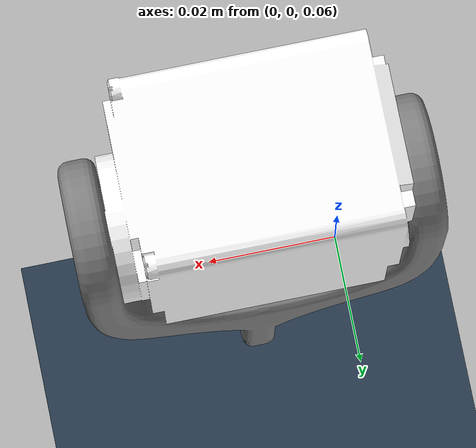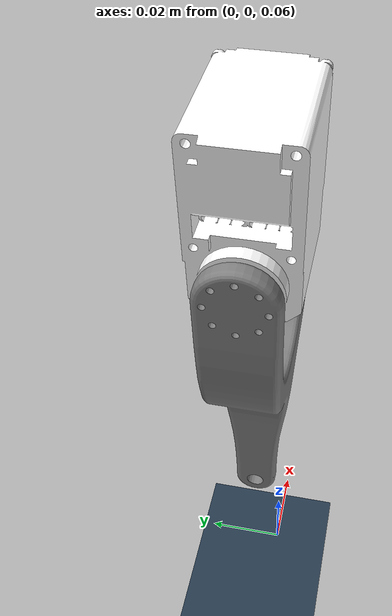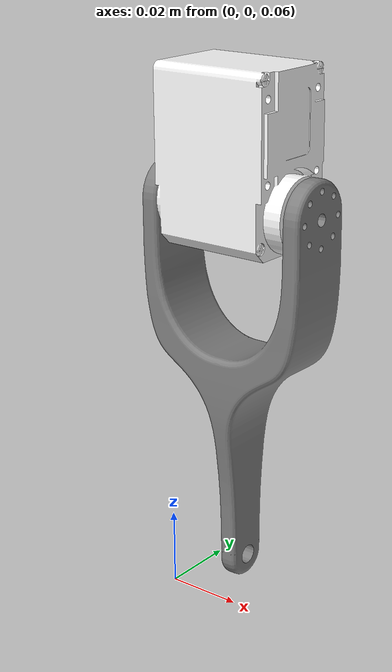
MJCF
<mujoco>
  <compiler angle="radian"/>

  <asset>
    <mesh name="servo_mesh" file="mesh/servo.STL" scale="0.001 0.001 0.001"/>
    <mesh name="leg_mesh" file="mesh/leg.STL" scale="0.001 0.001 0.001"/>
    <texture type="skybox" builtin="gradient" rgb1="1 1 1" rgb2=".6 .8 1" width="256" height="256" />
    <texture name="texplane" type="2d" builtin="checker" rgb1=".2 .3 .4" rgb2=".1 0.15 0.2" width="512" height="512"/>
    <material name="matplane" texture="texplane" texrepeat="1 1" texuniform="true" />
  </asset>

  <worldbody>
    <light directional="true" diffuse=".4 .4 .4" specular="0.1 0.1 0.1" pos="0 0 3" dir="0 0 -1" />
    <geom name="ground" type="plane" size="0 0 1" pos="0 0 0" quat="1 0 0 0" material="matplane" condim="1" />

    <body name="servo_body" pos="0 0 0.2">
      <inertial pos="0.01484 0.009499 -0.022164" mass="0.057365" fullinertia="1.255e-5 1.494e-5 8.128e-6 -4.41e-10 1.372e-7 -7.8e-11" />
      <geom type="mesh" mesh="servo_mesh" rgba="1 1 1 1"/>

      <body name="leg_body" pos="0.034 0.0095 -0.035">
        <inertial pos="-0.019046 0 -0.03538" mass="0.157203" fullinertia="8.7386e-5 1.185e-4 3.968e-5 2.2e-11 2.558e-7 6.9e-11"/>
        <joint name="leg_joint" type="hinge" axis="1 0 0" range="-1.57 1.57" damping="0.1"/>
        <geom type="mesh" mesh="leg_mesh" pos="-0.034 -0.0095 0.035" rgba="0.5 0.5 0.5 1"/>
      </body>

    </body>
  </worldbody>

  <contact>
    <exclude name="e0" body1="servo_body" body2="leg_body" />
  </contact>

  <actuator>
    <position name="leg_servo" joint="leg_joint"/>
  </actuator>

</mujoco>
